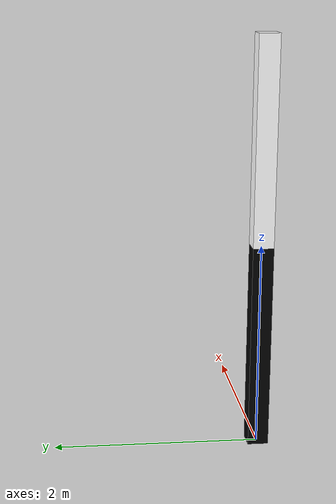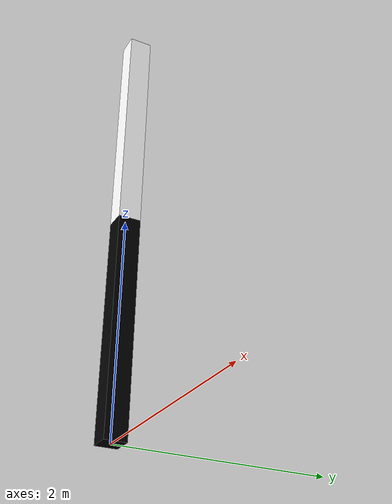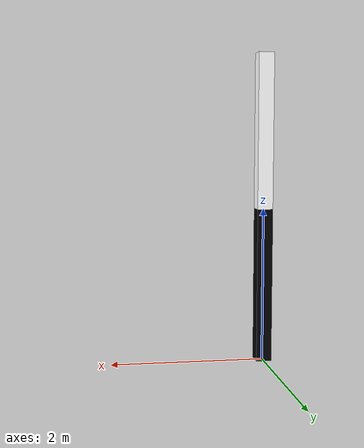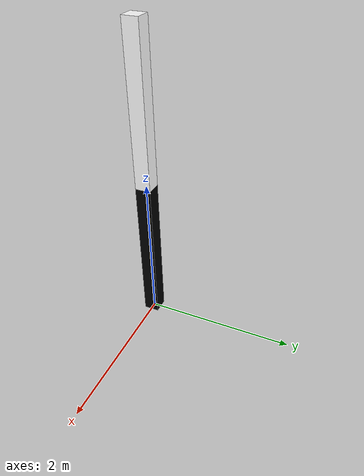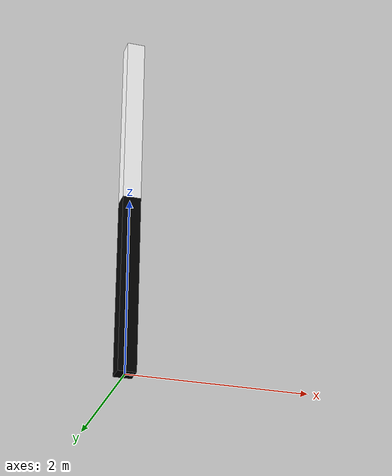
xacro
<?xml version="1.0"?>

<robot name="robot" xmlns:xacro="http://ros.org/wiki/xacro" >

    <material name="black">
        <color rgba="0 0 0 1"/>
    </material>
    <material name="white">
      <color rgba="1 1 1 1"/>
    </material>

    <xacro:property name="width" value="0.2" />

    <xacro:macro name="default_link" params="color">
        <collision>
            <origin xyz="0.0 0.0 1.0" rpy="0.0 0.0 0.0"/>
            <geometry>
                <box size="0.2 0.2 2.0"/>
            </geometry>
        </collision>
        <visual>
            <origin xyz="0.0 0.0 1.0" rpy="0.0 0.0 0.0"/>
            <geometry>
                <box size="0.2 0.2 2"/>
            </geometry>
            <material name="${color}"/>
        </visual>
        <inertial>
            <origin xyz="0.0 0.0 1.0" rpy="0.0 0.0 0.0"/>
            <mass value="2"/>
            <inertia ixx="0.67" ixy="0.0" ixz="0.0" iyy="0.67" iyz="0.0" izz="0.013"/>  <!--ixx=m(y2+z2)/12-->
        </inertial>

    </xacro:macro>

    <link name="world"/>
    <joint name="fixed" type="fixed">
        <parent link="world"/>
        <child link="base_link"/>
    </joint>

    <link name= "base_link">  <!--link fixo-->
        <xacro:default_link color="black"/>
    </link>

    <link name= "link2">
        <xacro:default_link color="white"/>
    </link>

    <joint name="joint1" type="continuous">
       <parent link="base_link"/>
       <child link="link2"/>
       <origin xyz="0.0 0.0 2.00" rpy="0.0 0.0 0.0"/>
       <axis xyz="0.0 1.0 0.0"/>
       <dynamics damping="0.7"/>
    </joint>

    <gazebo>
        <plugin filename="move_robot.so" name="gazebo_ros_control">
            <robotNamespace>robot</robotNamespace>
        </plugin>
    </gazebo>
    <transmission name="joint1_trans">
        <type>transmission_interface/SimpleTransmission</type>
        <joint name ="joint1">
            <hardwareInterface>hardware_interface/PositionJointInterface</hardwareInterface>
        </joint>
        <actuator name="link2">
            <hardwareInterface>hardware_interface/PositionJointInterface</hardwareInterface>
        </actuator>
    </transmission>

</robot>
